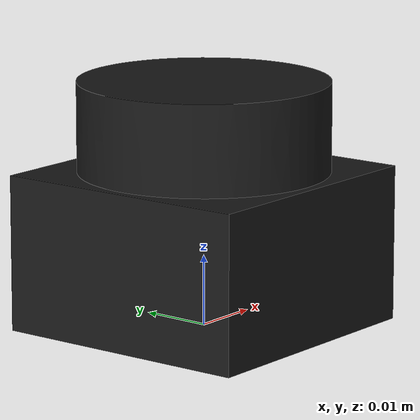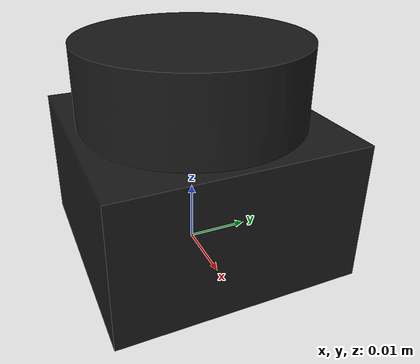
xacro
<?xml version="1.0" encoding="utf-8"?>
<robot
        xmlns:xacro="http://ros.org/wiki/xacro"
        name="ld19">
    <xacro:include filename="$(find ldlidar_stl_description)/urdf/ld19.xacro" />

    <!-- arguments -->
    <xacro:arg
            name="prefix"
            default="" />
    <xacro:arg
            name="sensor_range_visible"
            default="false" />

    <!-- links -->
    <link name="$(arg prefix)base_link" />

    <xacro:ld19
            parent="$(arg prefix)base_link"
            prefix="$(arg prefix)"
            sensor_range_visible="$(arg sensor_range_visible)">
        <origin
                xyz="0 0 0"
                rpy="0 0 0" />
    </xacro:ld19>
</robot>

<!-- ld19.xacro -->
<robot xmlns:xacro="http://ros.org/wiki/xacro">
  <!-- Base path for meshes -->
  <xacro:property
      name="BASE_PATH"
      value="ldlidar_stl_description/meshes" />
  <xacro:property
      name="MESH_BASE_LINK"
      value="${BASE_PATH}/ld19.dae" />

  <xacro:macro
      name="ld19"
      params="prefix parent *origin sensor_range_visible">
    <material name="${prefix}ld19_material">
      <color rgba="0.0 0.0 0.0 0.0" />
    </material>
    <!-- links -->
    <link name="${prefix}ld19_base_link">
      <inertial>
        <origin
            xyz="-5.23E-13 0.00 16.02E-03"
            rpy="0 0 0" />
        <mass value="47.7E-03" />
        <inertia
            ixx="9783.697E-09"
            ixy="0.0"
            ixz="3.136E-16"
            iyy="9783.697E-09"
            iyz="0.0"
            izz="10467.012E-09" />
      </inertial>
      <visual>
        <origin
            xyz="0 0 0"
            rpy="0 0 0" />
        <geometry>
          <mesh filename="package://${MESH_BASE_LINK}" />
        </geometry>
      </visual>
      <collision>
        <origin
            xyz="0 0 0"
            rpy="0 0 0" />
        <geometry>
          <mesh filename="package://${MESH_BASE_LINK}" />
        </geometry>
      </collision>
    </link>

    <!-- joints -->
    <joint
        name="${prefix}ld19_base_joint"
        type="fixed">
      <parent link="${parent}" />
      <child link="${prefix}ld19_base_link" />
      <xacro:insert_block name="origin" />
    </joint>
  </xacro:macro>
</robot>
